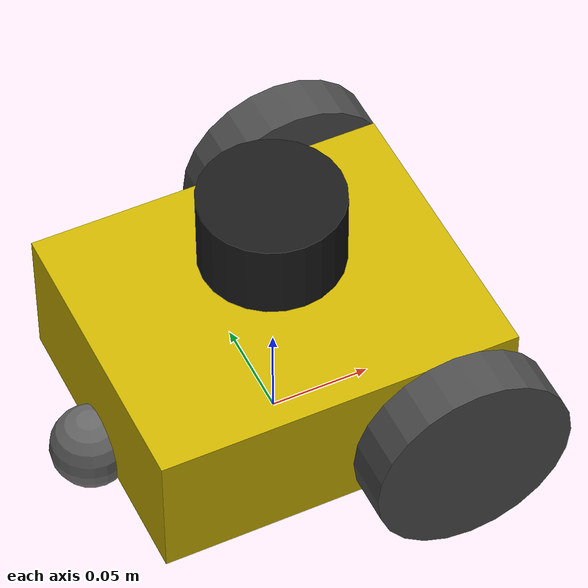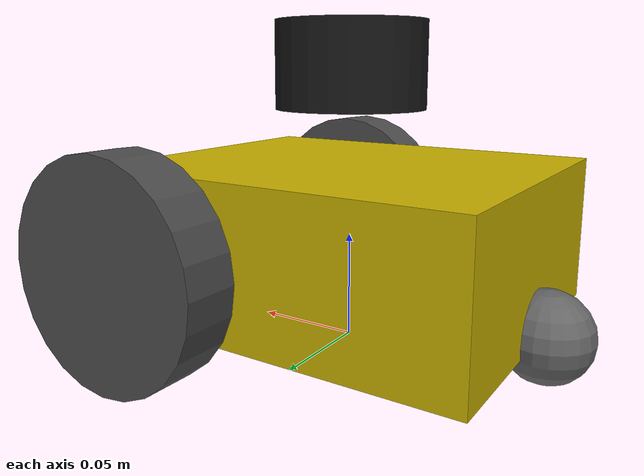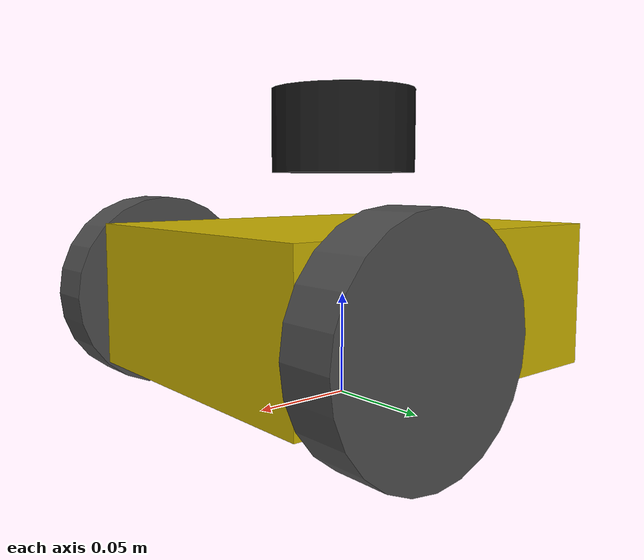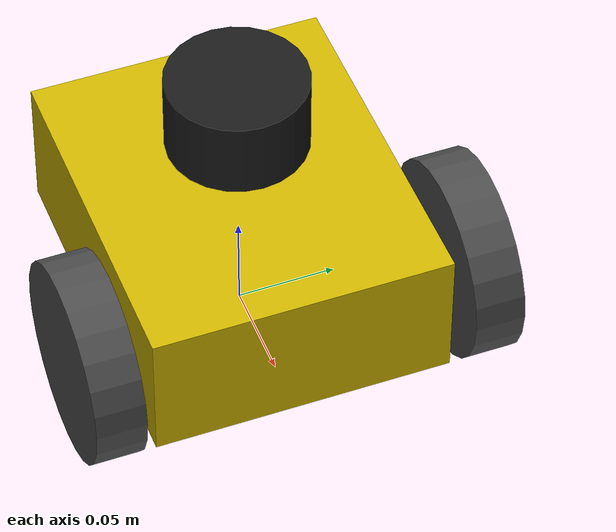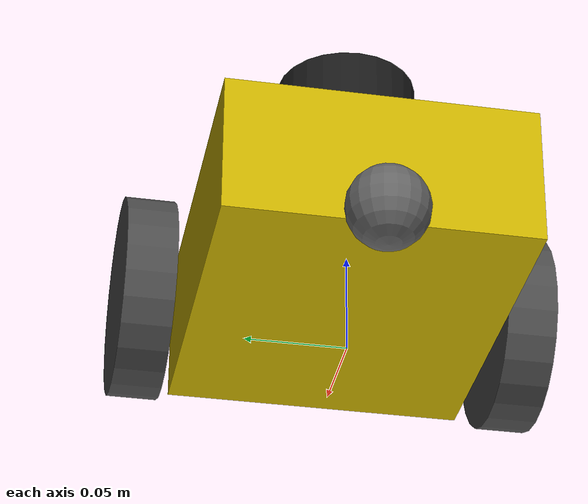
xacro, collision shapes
<?xml version="1.0"?>
<robot name="puzzlebot" xmlns:xacro="http://www.ros.org/wiki/xacro">

  <!-- ============================================================
       PROPERTIES  (tune these to match real hardware)
       ============================================================ -->
  <xacro:property name="base_mass"       value="0.5"/>
  <xacro:property name="wheel_mass"      value="0.05"/>
  <xacro:property name="caster_mass"     value="0.02"/>
  <xacro:property name="lidar_mass"      value="0.17"/>

  <!-- Robot body box (length x width x height) -->
  <xacro:property name="base_length"     value="0.18"/>
  <xacro:property name="base_width"      value="0.15"/>
  <xacro:property name="base_height"     value="0.07"/>

  <!-- Wheel cylinder -->
  <xacro:property name="wheel_radius"    value="0.05"/>
  <xacro:property name="wheel_width"     value="0.025"/>
  <xacro:property name="wheel_separation" value="0.19"/>  <!-- center-to-center -->

  <!-- Caster sphere -->
  <xacro:property name="caster_radius"   value="0.02"/>

  <!-- LiDAR cylinder (purely visual/TF reference) -->
  <xacro:property name="lidar_radius"    value="0.035"/>
  <xacro:property name="lidar_height"    value="0.04"/>

  <!-- ============================================================
       INERTIA MACROS
       ============================================================ -->
  <!-- Solid box -->
  <xacro:macro name="box_inertia" params="m l w h">
    <inertial>
      <mass value="${m}"/>
      <inertia
        ixx="${m/12.0*(w*w+h*h)}" ixy="0" ixz="0"
        iyy="${m/12.0*(l*l+h*h)}" iyz="0"
        izz="${m/12.0*(l*l+w*w)}"/>
    </inertial>
  </xacro:macro>

  <!-- Solid cylinder (axis = Z) -->
  <xacro:macro name="cylinder_inertia" params="m r h">
    <inertial>
      <mass value="${m}"/>
      <inertia
        ixx="${m/12.0*(3*r*r+h*h)}" ixy="0" ixz="0"
        iyy="${m/12.0*(3*r*r+h*h)}" iyz="0"
        izz="${m/2.0*r*r}"/>
    </inertial>
  </xacro:macro>

  <!-- Solid sphere -->
  <xacro:macro name="sphere_inertia" params="m r">
    <inertial>
      <mass value="${m}"/>
      <inertia
        ixx="${2.0/5.0*m*r*r}" ixy="0" ixz="0"
        iyy="${2.0/5.0*m*r*r}" iyz="0"
        izz="${2.0/5.0*m*r*r}"/>
    </inertial>
  </xacro:macro>

  <!-- ============================================================
       WHEEL MACRO  (reused for left and right)
       ============================================================ -->
  <xacro:macro name="wheel" params="name y_reflect">
    <link name="${name}_link">
      <visual>
        <origin xyz="0 0 0" rpy="1.5708 0 0"/>
        <geometry>
          <mesh filename="package://puzzlebot_description/meshes/Puzzlebot_Wheel.stl"/>
        </geometry>
        <material name="dark_grey">
          <color rgba="0.3 0.3 0.3 1.0"/>
        </material>
      </visual>
      <collision>
        <origin xyz="0 0 0" rpy="1.5708 0 0"/>
        <geometry>
          <cylinder radius="${wheel_radius}" length="${wheel_width}"/>
        </geometry>
      </collision>
      <xacro:cylinder_inertia m="${wheel_mass}" r="${wheel_radius}" h="${wheel_width}"/>
    </link>

    <joint name="${name}_joint" type="continuous">
      <parent link="base_link"/>
      <child  link="${name}_link"/>
      <origin xyz="0.052 ${y_reflect * wheel_separation/2.0} -0.0025" rpy="0 0 0"/>
      <axis xyz="0 1 0"/>
      <dynamics damping="0.01" friction="0.1"/>
    </joint>
  </xacro:macro>

  <!-- ============================================================
       LINKS
       ============================================================ -->

  <!-- Ground-projection frame (used by Nav2 for 2-D navigation) -->
  <link name="base_footprint"/>

  <!-- Main chassis -->
  <link name="base_link">
    <visual>
      <origin xyz="0 0 0" rpy="0 0 0"/>
      <geometry>
        <mesh filename="package://puzzlebot_description/meshes/Puzzlebot_Jetson_Lidar_Edition_Base.stl"/>
      </geometry>
      <material name="yellow">
        <color rgba="0.8 0.7 0.0 1.0"/>
      </material>
    </visual>
    <collision>
      <origin xyz="0 0 0" rpy="0 0 0"/>
      <geometry>
        <box size="${base_length} ${base_width} ${base_height}"/>
      </geometry>
    </collision>
    <xacro:box_inertia m="${base_mass}" l="${base_length}" w="${base_width}" h="${base_height}"/>
  </link>

  <!-- Passive rear caster wheel -->
  <link name="caster_link">
    <visual>
      <origin xyz="0 0 0" rpy="0 0 0"/>
      <geometry>
        <mesh filename="package://puzzlebot_description/meshes/Puzzlebot_Caster_Wheel.stl"/>
      </geometry>
      <material name="grey">
        <color rgba="0.4 0.4 0.4 1.0"/>
      </material>
    </visual>
    <collision>
      <origin xyz="0 0 0" rpy="0 0 0"/>
      <geometry>
        <sphere radius="${caster_radius}"/>
      </geometry>
    </collision>
    <xacro:sphere_inertia m="${caster_mass}" r="${caster_radius}"/>
  </link>

  <!-- LiDAR sensor frame -->
  <link name="lidar_link">
    <visual>
      <origin xyz="0 0 0" rpy="0 0 0"/>
      <geometry>
        <cylinder radius="${lidar_radius}" length="${lidar_height}"/>
      </geometry>
      <material name="black">
        <color rgba="0.1 0.1 0.1 1.0"/>
      </material>
    </visual>
    <collision>
      <origin xyz="0 0 0" rpy="0 0 0"/>
      <geometry>
        <cylinder radius="${lidar_radius}" length="${lidar_height}"/>
      </geometry>
    </collision>
    <xacro:cylinder_inertia m="${lidar_mass}" r="${lidar_radius}" h="${lidar_height}"/>
  </link>

  <!-- ============================================================
       WHEELS (via macro)
       ============================================================ -->
  <xacro:wheel name="wheel_r" y_reflect="-1"/>
  <xacro:wheel name="wheel_l" y_reflect="1"/>

  <!-- ============================================================
       JOINTS
       ============================================================ -->

  <!-- base_footprint → base_link  (lifted 5 cm off the ground) -->
  <joint name="base_link_joint" type="fixed">
    <parent link="base_footprint"/>
    <child  link="base_link"/>
    <origin xyz="0 0 0.05" rpy="0 0 0"/>
  </joint>

  <!-- base_link → caster (rear passive wheel) -->
  <joint name="caster_joint" type="fixed">
    <parent link="base_link"/>
    <child  link="caster_link"/>
    <origin xyz="-0.095 0.0 -0.03" rpy="0 0 0"/>
  </joint>

  <!-- base_link → lidar_link  (top-centre of the robot) -->
  <joint name="lidar_joint" type="fixed">
    <parent link="base_link"/>
    <child  link="lidar_link"/>
    <origin xyz="0.0 0.0 0.08" rpy="0 0 0"/>
  </joint>

  <!-- ============================================================
       GAZEBO CLASSIC — Material colours
       ============================================================ -->
  <gazebo reference="base_link">
    <material>Gazebo/Yellow</material>
  </gazebo>
  <gazebo reference="wheel_r_link">
    <material>Gazebo/DarkGrey</material>
    <mu1>1.0</mu1>
    <mu2>1.0</mu2>
    <kp>500000.0</kp>
    <kd>10.0</kd>
  </gazebo>
  <gazebo reference="wheel_l_link">
    <material>Gazebo/DarkGrey</material>
    <mu1>1.0</mu1>
    <mu2>1.0</mu2>
    <kp>500000.0</kp>
    <kd>10.0</kd>
  </gazebo>
  <gazebo reference="caster_link">
    <material>Gazebo/Grey</material>
    <!-- Low friction so it slides freely -->
    <mu1>0.0</mu1>
    <mu2>0.0</mu2>
  </gazebo>
  <gazebo reference="lidar_link">
    <material>Gazebo/Black</material>
  </gazebo>

  <gazebo>
    <plugin name="differential_drive_controller" filename="libgazebo_ros_diff_drive.so">
      <update_rate>30</update_rate>
      <left_joint>wheel_l_joint</left_joint>
      <right_joint>wheel_r_joint</right_joint>
      <wheel_separation>${wheel_separation}</wheel_separation>
      <wheel_diameter>${2*wheel_radius}</wheel_diameter>
      <max_wheel_torque>20</max_wheel_torque>
      <max_wheel_acceleration>1.0</max_wheel_acceleration>
      <odometry_frame>odom</odometry_frame>
      <robot_base_frame>base_footprint</robot_base_frame>
      <publish_odom>true</publish_odom>
      <publish_odom_tf>true</publish_odom_tf>
      <publish_wheel_tf>false</publish_wheel_tf>
      <ros>
        <remapping>cmd_vel:=cmd_vel</remapping>
        <remapping>odom:=odom</remapping>
      </ros>
    </plugin>
  </gazebo>

  <gazebo reference="lidar_link">
    <sensor name="lidar_sensor" type="ray">
      <pose>0 0 0 0 0 0</pose>
      <always_on>true</always_on>
      <visualize>false</visualize>
      <update_rate>10</update_rate>
      <ray>
        <scan>
          <horizontal>
            <samples>360</samples>
            <resolution>1</resolution>
            <min_angle>-3.14159265</min_angle>
            <max_angle>3.14159265</max_angle>
          </horizontal>
        </scan>
        <range>
          <min>0.12</min>
          <max>5.0</max>
          <resolution>0.015</resolution>
        </range>
        <noise>
          <type>gaussian</type>
          <mean>0.0</mean>
          <stddev>0.01</stddev>
        </noise>
      </ray>
      <plugin name="gazebo_ros_laser" filename="libgazebo_ros_ray_sensor.so">
        <ros>
          <remapping>~/out:=scan</remapping>
        </ros>
        <output_type>sensor_msgs/LaserScan</output_type>
        <frame_name>lidar_link</frame_name>
      </plugin>
    </sensor>
  </gazebo>

</robot>
